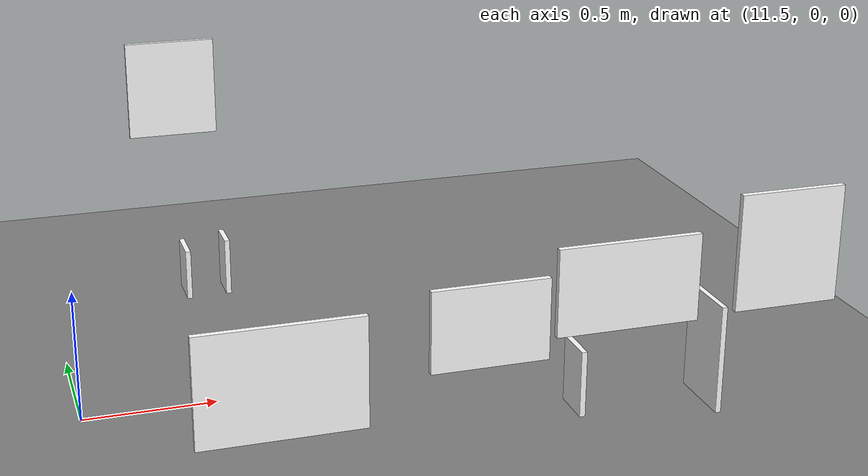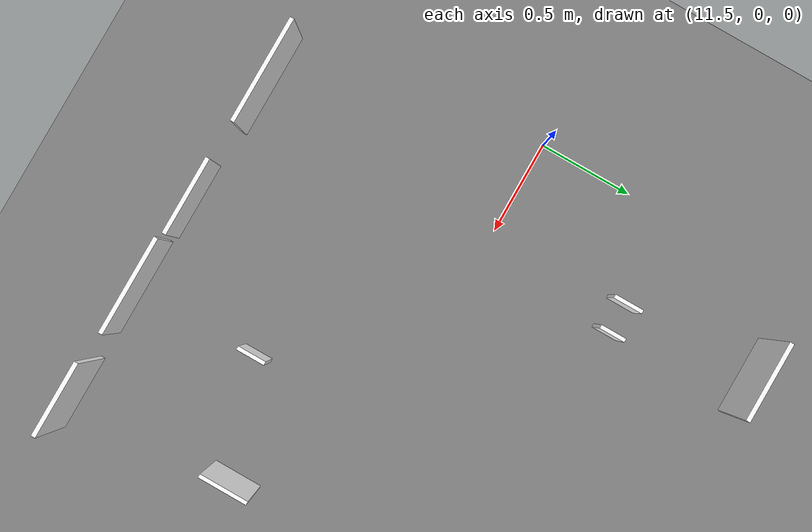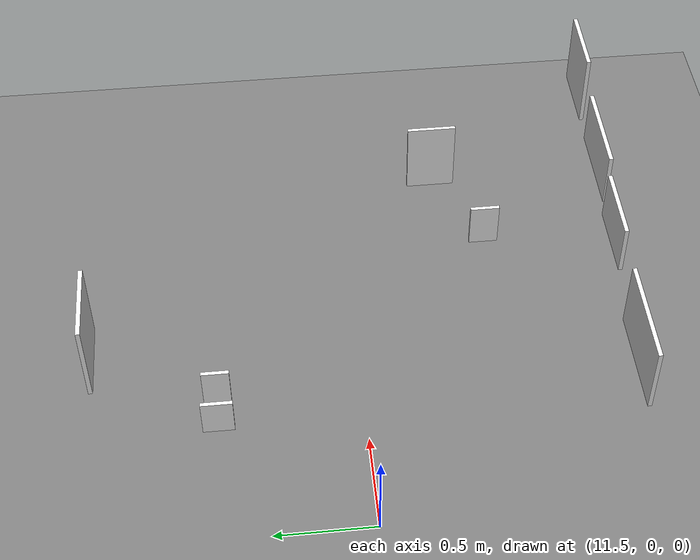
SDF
<sdf version="1.9">
 <world name="tunnel_world">
  <model name="ground_plane">
   <static>true</static>
   <link name="ground">
    <collision name="ground_collision">
     <geometry><plane><normal>0 0 1</normal><size>100 100</size></plane></geometry>
    </collision>
    <visual name="ground_visual">
     <geometry><plane><normal>0 0 1</normal><size>100 100</size></plane></geometry>
     <material>
      <diffuse>0.50 0.50 0.50 1</diffuse>
      <emissive>0.08 0.08 0.08 1</emissive>
      <ambient>0.5 0.5 0.5</ambient>
     </material>
    </visual>
   </link>
  </model>
  <model name="defect_crack_01">
   <static>true</static>
   <pose>12.611 -1.25 0.758 0 0 0</pose>
   <link name="link">
    <visual name="visual">
     <laser_retro>500</laser_retro>
     <geometry><box><size>0.376 0.02 0.265</size></box></geometry>
     <material>
      <ambient>1 1 1 1</ambient>
      <diffuse>1 1 1 1</diffuse>
      <emissive>0.05 0.05 0.05 1</emissive>
      <specular>0.05 0.05 0.05 1</specular>
      <pbr>
       <metal>
        <albedo_map>file:///home/ylf/workspace/inspection_robot/data_gen/textures/crack_4.png</albedo_map>
        <metalness>0.0</metalness>
        <roughness>0.9</roughness>
       </metal>
      </pbr>
     </material>
    </visual>
    <collision name="collision"><geometry><box><size>0.376 0.02 0.265</size></box></geometry></collision>
   </link>
  </model>
  <model name="defect_crack_07">
   <static>true</static>
   <pose>12.076 1.25 0.868 0 0 0</pose>
   <link name="link">
    <visual name="visual">
     <laser_retro>500</laser_retro>
     <geometry><box><size>0.37 0.02 0.406</size></box></geometry>
     <material>
      <ambient>1 1 1 1</ambient>
      <diffuse>1 1 1 1</diffuse>
      <emissive>0.05 0.05 0.05 1</emissive>
      <specular>0.05 0.05 0.05 1</specular>
      <pbr>
       <metal>
        <albedo_map>file:///home/ylf/workspace/inspection_robot/data_gen/textures/crack_1.png</albedo_map>
        <metalness>0.0</metalness>
        <roughness>0.9</roughness>
       </metal>
      </pbr>
     </material>
    </visual>
    <collision name="collision"><geometry><box><size>0.37 0.02 0.406</size></box></geometry></collision>
   </link>
  </model>
  <model name="defect_crack_08">
   <static>true</static>
   <pose>13.593 -1.25 0.893 0 0 0</pose>
   <link name="link">
    <visual name="visual">
     <laser_retro>500</laser_retro>
     <geometry><box><size>0.35 0.02 0.383</size></box></geometry>
     <material>
      <ambient>1 1 1 1</ambient>
      <diffuse>1 1 1 1</diffuse>
      <emissive>0.05 0.05 0.05 1</emissive>
      <specular>0.05 0.05 0.05 1</specular>
      <pbr>
       <metal>
        <albedo_map>file:///home/ylf/workspace/inspection_robot/data_gen/textures/crack_1.png</albedo_map>
        <metalness>0.0</metalness>
        <roughness>0.9</roughness>
       </metal>
      </pbr>
     </material>
    </visual>
    <collision name="collision"><geometry><box><size>0.35 0.02 0.383</size></box></geometry></collision>
   </link>
  </model>
  <model name="defect_equip_intrusion_02">
   <static>true</static>
   <pose>13.728 -0.514 0.217 0 0 0</pose>
   <link name="link">
    <visual name="visual">
     <laser_retro>900</laser_retro>
     <geometry><box><size>0.02 0.26 0.415</size></box></geometry>
     <material>
      <ambient>1 1 1 1</ambient>
      <diffuse>1 1 1 1</diffuse>
      <emissive>0.05 0.05 0.05 1</emissive>
      <specular>0.05 0.05 0.05 1</specular>
      <pbr>
       <metal>
        <albedo_map>file:///home/ylf/workspace/inspection_robot/data_gen/textures/equip_intrusion_4.png</albedo_map>
        <metalness>0.0</metalness>
        <roughness>0.9</roughness>
       </metal>
      </pbr>
     </material>
    </visual>
   </link>
  </model>
  <model name="defect_rail_fastener_broken_04">
   <static>true</static>
   <pose>13.124 -0.717 0.276 0 0 0</pose>
   <link name="link">
    <visual name="visual">
     <laser_retro>450</laser_retro>
     <geometry><box><size>0.02 0.15 0.242</size></box></geometry>
     <material>
      <ambient>1 1 1 1</ambient>
      <diffuse>1 1 1 1</diffuse>
      <emissive>0.05 0.05 0.05 1</emissive>
      <specular>0.05 0.05 0.05 1</specular>
      <pbr>
       <metal>
        <albedo_map>file:///home/ylf/workspace/inspection_robot/data_gen/textures/rail_fastener_broken_1.png</albedo_map>
        <metalness>0.0</metalness>
        <roughness>0.9</roughness>
       </metal>
      </pbr>
     </material>
    </visual>
   </link>
  </model>
  <model name="defect_rail_fastener_loose_04">
   <static>true</static>
   <pose>12.019 0.717 0.256 0 0 0</pose>
   <link name="link">
    <visual name="visual">
     <laser_retro>380</laser_retro>
     <geometry><box><size>0.02 0.153 0.201</size></box></geometry>
     <material>
      <ambient>1 1 1 1</ambient>
      <diffuse>1 1 1 1</diffuse>
      <emissive>0.05 0.05 0.05 1</emissive>
      <specular>0.05 0.05 0.05 1</specular>
      <pbr>
       <metal>
        <albedo_map>file:///home/ylf/workspace/inspection_robot/data_gen/textures/rail_fastener_loose_1.png</albedo_map>
        <metalness>0.0</metalness>
        <roughness>0.9</roughness>
       </metal>
      </pbr>
     </material>
    </visual>
   </link>
  </model>
  <model name="defect_rail_fastener_missing_01">
   <static>true</static>
   <pose>12.18 0.717 0.269 0 0 0</pose>
   <link name="link">
    <visual name="visual">
     <laser_retro>520</laser_retro>
     <geometry><box><size>0.02 0.134 0.228</size></box></geometry>
     <material>
      <ambient>1 1 1 1</ambient>
      <diffuse>1 1 1 1</diffuse>
      <emissive>0.05 0.05 0.05 1</emissive>
      <specular>0.05 0.05 0.05 1</specular>
      <pbr>
       <metal>
        <albedo_map>file:///home/ylf/workspace/inspection_robot/data_gen/textures/rail_fastener_missing_5.png</albedo_map>
        <metalness>0.0</metalness>
        <roughness>0.9</roughness>
       </metal>
      </pbr>
     </material>
    </visual>
   </link>
  </model>
  <model name="defect_spalling_02">
   <static>true</static>
   <pose>11.973 -1.25 0.661 0 0 0</pose>
   <link name="link">
    <visual name="visual">
     <laser_retro>700</laser_retro>
     <geometry><box><size>0.521 0.02 0.36</size></box></geometry>
     <material>
      <ambient>1 1 1 1</ambient>
      <diffuse>1 1 1 1</diffuse>
      <emissive>0.05 0.05 0.05 1</emissive>
      <specular>0.05 0.05 0.05 1</specular>
      <pbr>
       <metal>
        <albedo_map>file:///home/ylf/workspace/inspection_robot/data_gen/textures/spalling_5.png</albedo_map>
        <metalness>0.0</metalness>
        <roughness>0.9</roughness>
       </metal>
      </pbr>
     </material>
    </visual>
    <collision name="collision"><geometry><box><size>0.521 0.02 0.36</size></box></geometry></collision>
   </link>
  </model>
  <model name="defect_spalling_04">
   <static>true</static>
   <pose>13.055 -1.25 0.834 0 0 0</pose>
   <link name="link">
    <visual name="visual">
     <laser_retro>700</laser_retro>
     <geometry><box><size>0.466 0.02 0.285</size></box></geometry>
     <material>
      <ambient>1 1 1 1</ambient>
      <diffuse>1 1 1 1</diffuse>
      <emissive>0.05 0.05 0.05 1</emissive>
      <specular>0.05 0.05 0.05 1</specular>
      <pbr>
       <metal>
        <albedo_map>file:///home/ylf/workspace/inspection_robot/data_gen/textures/spalling_1.png</albedo_map>
        <metalness>0.0</metalness>
        <roughness>0.9</roughness>
       </metal>
      </pbr>
     </material>
    </visual>
    <collision name="collision"><geometry><box><size>0.466 0.02 0.285</size></box></geometry></collision>
   </link>
  </model>
 </world>
</sdf>
